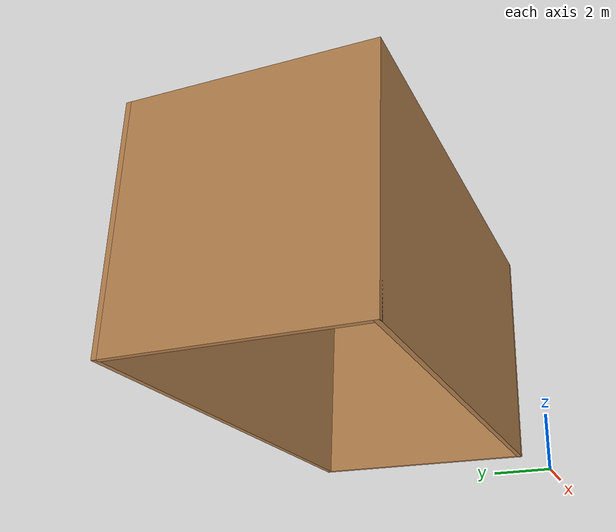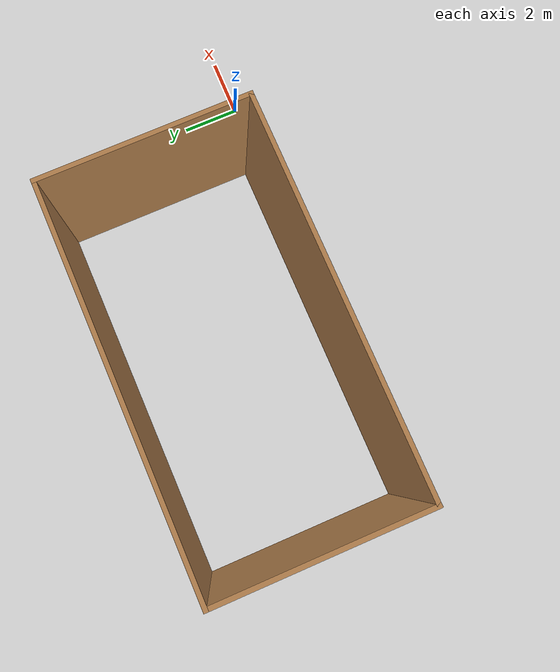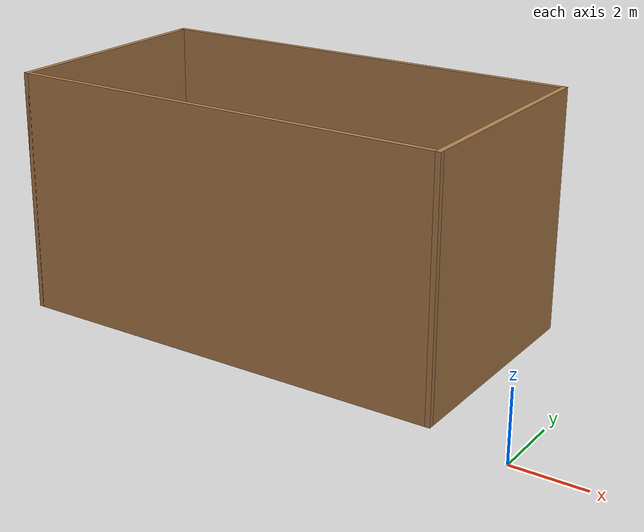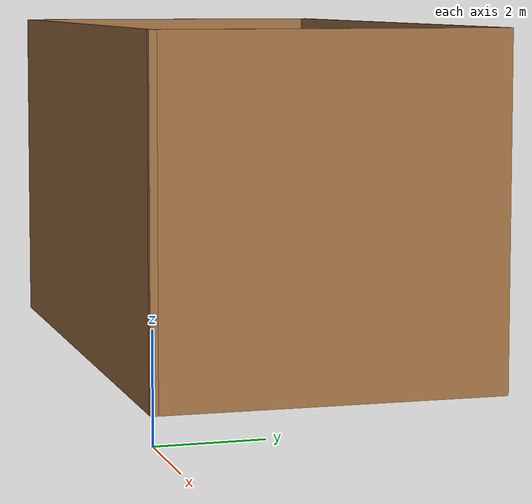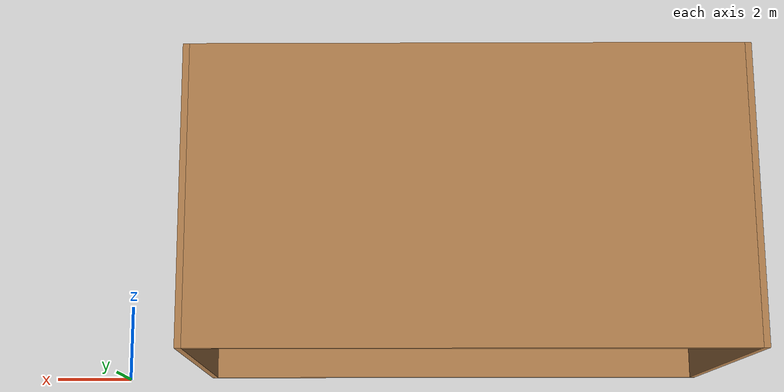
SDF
<?xml version='1.0'?>
<sdf version='1.7'>
  <model name='forst_tju_walls'>
    <pose>-7.6565 3.74701 0 0 -0 0</pose>
    <link name='Wall_1'>
      <collision name='Wall_1_Collision'>
        <geometry>
          <box>
            <size>7 0.15 7</size>
          </box>
        </geometry>
        <pose>0 0 3.5 0 -0 0</pose>
      </collision>
      <visual name='Wall_1_Visual'>
        <pose>0 0 3.5 0 -0 0</pose>
        <geometry>
          <box>
            <size>7 0.15 7</size>
          </box>
        </geometry>
        <material>
          <script>
            <uri>file://media/materials/scripts/gazebo.material</uri>
            <name>Gazebo/Wood</name>
          </script>
          <ambient>1 1 1 1</ambient>
        </material>
        <meta>
          <layer>0</layer>
        </meta>
      </visual>
      <pose>-7.5815 0.246991 0 0 -0 -1.5708</pose>
    </link>
    <link name='Wall_3'>
      <collision name='Wall_3_Collision'>
        <geometry>
          <box>
            <size>13 0.15 7</size>
          </box>
        </geometry>
        <pose>0 0 3.5 0 -0 0</pose>
      </collision>
      <visual name='Wall_3_Visual'>
        <pose>0 0 3.5 0 -0 0</pose>
        <geometry>
          <box>
            <size>13 0.15 7</size>
          </box>
        </geometry>
        <material>
          <script>
            <uri>file://media/materials/scripts/gazebo.material</uri>
            <name>Gazebo/Wood</name>
          </script>
          <ambient>1 1 1 1</ambient>
        </material>
        <meta>
          <layer>0</layer>
        </meta>
      </visual>
      <pose>-1.1565 -3.17801 0 0 -0 0</pose>
    </link>
    <link name='Wall_5'>
      <collision name='Wall_5_Collision'>
        <geometry>
          <box>
            <size>13 0.15 7</size>
          </box>
        </geometry>
        <pose>0 0 3.5 0 -0 0</pose>
      </collision>
      <visual name='Wall_5_Visual'>
        <pose>0 0 3.5 0 -0 0</pose>
        <geometry>
          <box>
            <size>13 0.15 7</size>
          </box>
        </geometry>
        <material>
          <script>
            <uri>file://media/materials/scripts/gazebo.material</uri>
            <name>Gazebo/Wood</name>
          </script>
          <ambient>1 1 1 1</ambient>
        </material>
        <meta>
          <layer>0</layer>
        </meta>
      </visual>
      <pose>-1.1565 3.67199 0 0 -0 0</pose>
    </link>
    <link name='Wall_7'>
      <collision name='Wall_7_Collision'>
        <geometry>
          <box>
            <size>7.00004 0.15 7</size>
          </box>
        </geometry>
        <pose>0 0 3.5 0 -0 0</pose>
      </collision>
      <visual name='Wall_7_Visual'>
        <pose>0 0 3.5 0 -0 0</pose>
        <geometry>
          <box>
            <size>7.00004 0.15 7</size>
          </box>
        </geometry>
        <material>
          <script>
            <uri>file://media/materials/scripts/gazebo.material</uri>
            <name>Gazebo/Wood</name>
          </script>
          <ambient>1 1 1 1</ambient>
        </material>
        <meta>
          <layer>0</layer>
        </meta>
      </visual>
      <pose>5.2685 0.246991 0 0 -0 -1.5708</pose>
    </link>
    <static>1</static>
  </model>
</sdf>
